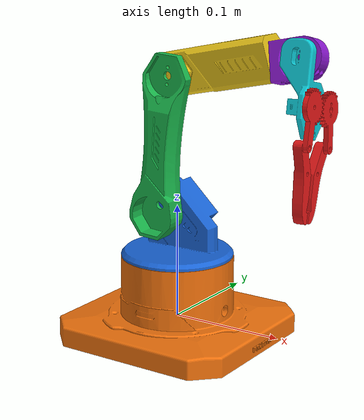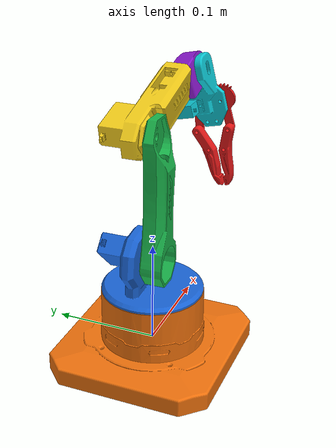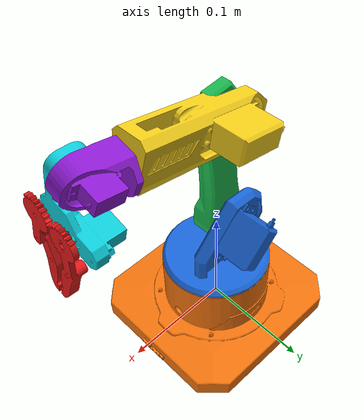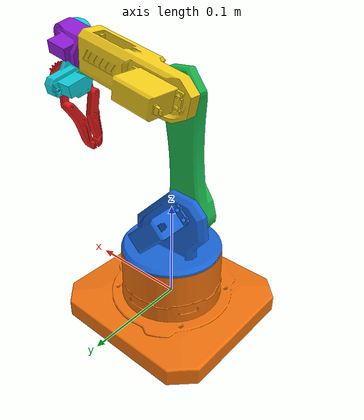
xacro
<?xml version="1.0"?>
<robot xmlns:xacro="http://www.ros.org/wiki/xacro" name="falcon_robotic_arm">
    <xacro:arg name="initial_positions_file" default="initial_positions.yaml" />
    <xacro:arg name="sim_gazebo"    default="false"/>
    <xacro:arg name="hardware_type" default="fake"/>
    <xacro:arg name="serial_port"   default="/dev/ttyACM0"/>

    <!-- Import falcon_robotic_arm urdf file (includes ros2_control via description) -->
    <xacro:include filename="$(find falcon_robotic_arm_description)/urdf/falcon_robotic_arm.xacro" />

</robot>

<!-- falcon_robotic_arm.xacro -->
<robot name="falcon_robotic_arm_description" xmlns:xacro="http://www.ros.org/wiki/xacro">

  <xacro:arg name="sim_gazebo"    default="false"/>
  <xacro:arg name="hardware_type" default="fake"/>
  <xacro:arg name="serial_port"   default="/dev/ttyACM0"/>
  <xacro:arg name="mesh_path"     default="package://falcon_robotic_arm_description/meshes"/>

  <xacro:include filename="$(find falcon_robotic_arm_description)/urdf/materials.xacro"/>
  <xacro:include filename="$(find falcon_robotic_arm_description)/urdf/falcon_robotic_arm.ros2control.xacro"/>
  <xacro:include filename="$(find falcon_robotic_arm_description)/urdf/falcon_robotic_arm.gazebo"/>

  <link name="world"/>

  <joint name="world_fixed" type="fixed">
    <origin xyz="0 0 0" rpy="-1.5708 0 0"/>
    <parent link="world"/>
    <child link="base_link"/>
  </joint>

  <link name="base_link">
    <inertial>
      <origin xyz="-0.0019960844905343 -0.0153377163207999 1.93060452762796E-07" rpy="0 0 0" />
      <mass value="1.35067323377802" />
      <inertia ixx="0.00197379180518826" ixy="-2.39949962417709E-05" ixz="-4.37708520775855E-10"
               iyy="0.00359939253361497" iyz="-1.49420778344598E-10" izz="0.00215545898679393" />
    </inertial>
    <visual>
      <origin xyz="0 0 0" rpy="0 0 0" />
      <geometry>
        <mesh filename="$(arg mesh_path)/visual/base_link.STL" />
      </geometry>
      <material name="falcon_orange"/>
    </visual>
    <collision>
      <origin xyz="0 0 0" rpy="0 0 0" />
      <geometry>
        <mesh filename="$(arg mesh_path)/collision/base_link.STL" />
      </geometry>
    </collision>
  </link>

  <link name="link_1">
    <inertial>
      <origin xyz="-0.00620394458366335 0.00751730270504279 0.00967772822170036" rpy="0 0 0" />
      <mass value="1.03065042921638" />
      <inertia ixx="0.000473702442232536" ixy="4.78979397009768E-06" ixz="7.46275012376232E-05"
               iyy="0.000598084004157016" iyz="-2.62259436207833E-05" izz="0.000586066353319823" />
    </inertial>
    <visual>
      <origin xyz="0 0 0" rpy="0 0 0" />
      <geometry>
        <mesh filename="$(arg mesh_path)/visual/link_1.STL" />
      </geometry>
      <material name="falcon_blue"/>
    </visual>
    <collision>
      <origin xyz="0 0 0" rpy="0 0 0" />
      <geometry>
        <mesh filename="$(arg mesh_path)/collision/link_1.STL" />
      </geometry>
    </collision>
  </link>

  <link name="link_2">
    <inertial>
      <origin xyz="0.00343704699093632 -0.0484533440120739 -0.00169296782221129" rpy="0 0 0" />
      <mass value="0.43322422150071" />
      <inertia ixx="0.000723130145208504" ixy="4.6714386780207E-05" ixz="-1.9951175089134E-06"
               iyy="6.62295883530864E-05" iyz="1.51706818836744E-05" izz="0.0007621611625683" />
    </inertial>
    <visual>
      <origin xyz="0 0 0" rpy="0 0 0" />
      <geometry>
        <mesh filename="$(arg mesh_path)/visual/link_2.STL" />
      </geometry>
      <material name="falcon_green"/>
    </visual>
    <collision>
      <origin xyz="0 0 0" rpy="0 0 0" />
      <geometry>
        <mesh filename="$(arg mesh_path)/collision/link_2.STL" />
      </geometry>
    </collision>
  </link>

  <link name="link_3">
    <inertial>
      <origin xyz="0.0321836019015889 -0.00783285253165519 0.0208645676066189" rpy="0 0 0" />
      <mass value="0.703739757969" />
      <inertia ixx="0.000141078786527962" ixy="8.774359256817E-05" ixz="-5.61715136467105E-06"
               iyy="0.000497859931087257" iyz="-3.06483915967249E-07" izz="0.000525999837211792" />
    </inertial>
    <visual>
      <origin xyz="0 0 0" rpy="0 0 0" />
      <geometry>
        <mesh filename="$(arg mesh_path)/visual/link_3.STL" />
      </geometry>
      <material name="falcon_yellow"/>
    </visual>
    <collision>
      <origin xyz="0 0 0" rpy="0 0 0" />
      <geometry>
        <mesh filename="$(arg mesh_path)/collision/link_3.STL" />
      </geometry>
    </collision>
  </link>

  <link name="link_4">
    <inertial>
      <origin xyz="0.0140180364394324 -0.00281389311320728 0.0105191248955689" rpy="0 0 0" />
      <mass value="0.179553546620447" />
      <inertia ixx="2.64090419843721E-05" ixy="3.18258793807896E-06" ixz="-6.22607142354255E-06"
               iyy="4.12332119298094E-05" iyz="1.45356805791967E-07" izz="3.01227817618961E-05" />
    </inertial>
    <visual>
      <origin xyz="0 0 0" rpy="0 0 0" />
      <geometry>
        <mesh filename="$(arg mesh_path)/visual/link_4.STL" />
      </geometry>
      <material name="falcon_purple"/>
    </visual>
    <collision>
      <origin xyz="0 0 0" rpy="0 0 0" />
      <geometry>
        <mesh filename="$(arg mesh_path)/collision/link_4.STL" />
      </geometry>
    </collision>
  </link>

  <link name="link_5">
    <inertial>
      <origin xyz="0.00544735994759318 0.0310241604159701 0.00424021692736841" rpy="0 0 0" />
      <mass value="0.178973093548359" />
      <inertia ixx="7.37572142902091E-05" ixy="-1.23054603956378E-05" ixz="-1.11952234366318E-06"
               iyy="3.01336288473334E-05" iyz="-7.97323306909106E-06" izz="6.23974948195481E-05" />
    </inertial>
    <visual>
      <origin xyz="0 0 0" rpy="0 0 0" />
      <geometry>
        <mesh filename="$(arg mesh_path)/visual/link_5.STL" />
      </geometry>
      <material name="falcon_cyan"/>
    </visual>
    <collision>
      <origin xyz="0 0 0" rpy="0 0 0" />
      <geometry>
        <mesh filename="$(arg mesh_path)/collision/link_5.STL" />
      </geometry>
    </collision>
  </link>

  <link name="gripper_link_1">
    <inertial>
      <origin xyz="0.0139328400746157 -0.0105060863672006 -0.0351215310829361" rpy="0 0 0" />
      <mass value="0.0566110893029332" />
      <inertia ixx="1.40520051854666E-05" ixy="1.40645161581947E-06" ixz="3.66393245597157E-06"
               iyy="1.25400099347856E-05" iyz="-4.17437951258401E-06" izz="4.53311301231506E-06" />
    </inertial>
    <visual>
      <origin xyz="0 0 0" rpy="0 0 0" />
      <geometry>
        <mesh filename="$(arg mesh_path)/visual/gripper_link_1.STL" />
      </geometry>
      <material name="falcon_red"/>
    </visual>
    <collision>
      <origin xyz="0 0 0" rpy="0 0 0" />
      <geometry>
        <mesh filename="$(arg mesh_path)/collision/gripper_link_1.STL" />
      </geometry>
    </collision>
  </link>

  <link name="gripper_link_2">
    <inertial>
      <origin xyz="0.0384298599777133 0.00540363244949994 0.00761482545500121" rpy="0 0 0" />
      <mass value="0.0571681364750211" />
      <inertia ixx="2.94728992397961E-06" ixy="-2.05300547048327E-06" ixz="-3.83750536740406E-06"
               iyy="1.41187090998331E-05" iyz="-7.84101517361656E-07" izz="1.41072271531774E-05" />
    </inertial>
    <visual>
      <origin xyz="0 0 0" rpy="0 0 0" />
      <geometry>
        <mesh filename="$(arg mesh_path)/visual/gripper_link_2.STL" />
      </geometry>
      <material name="falcon_red"/>
    </visual>
    <collision>
      <origin xyz="0 0 0" rpy="0 0 0" />
      <geometry>
        <mesh filename="$(arg mesh_path)/collision/gripper_link_2.STL" />
      </geometry>
    </collision>
  </link>

  <joint name="joint_1" type="revolute">
    <origin xyz="0 -0.0566999999999999 0" rpy="1.5707963267949 0 0" />
    <parent link="base_link" />
    <child link="link_1" />
    <axis xyz="0 0 -1" />
    <limit lower="-1.5708" upper="1.5708" effort="20" velocity="1" />
  </joint>

  <joint name="joint_2" type="revolute">
    <origin xyz="-0.0137215131637984 -0.00641954359829768 0.0427800384078716" rpy="-1.5707963267949 0 0" />
    <parent link="link_1" />
    <child link="link_2" />
    <axis xyz="-0.0303599450227944 0 0.999539030622723" />
    <limit lower="-1.5708" upper="1.5708" effort="50" velocity="1" />
    <dynamics damping="0.5" friction="0.0"/>
  </joint>

  <joint name="joint_3" type="revolute">
    <origin xyz="0.00794095704254513 -0.112469753821526 0.000241198204225561" rpy="0 0 0" />
    <parent link="link_2" />
    <child link="link_3" />
    <axis xyz="-0.0303599450227945 0 0.999539030622723" />
    <limit lower="-1.5708" upper="1.5708" effort="30" velocity="1" />
    <dynamics damping="0.3" friction="0.0"/>
  </joint>

  <joint name="joint_4" type="revolute">
    <origin xyz="0.0973881872709224 -0.0162762521315378 0.0182651196721196" rpy="1.5707963267949 0 0.392699081698725" />
    <parent link="link_3" />
    <child link="link_4" />
    <axis xyz="0.818727734388728 0.0296401954212068 0.573416389509484" />
    <limit lower="-1.5708" upper="1.5708" effort="20" velocity="1" />
  </joint>

  <joint name="joint_5" type="revolute">
    <origin xyz="0.0192684557070627 -0.0141614965142562 0.0178650813358514" rpy="-1.5707963267949 -0.392699081698725 0" />
    <parent link="link_4" />
    <child link="link_5" />
    <axis xyz="-0.0223564735183862 -0.233891765016945 -0.972005571151256" />
    <limit lower="-1.5708" upper="1.5708" effort="20" velocity="1" />
  </joint>

  <joint name="gripper_joint_1" type="revolute">
    <origin xyz="0.015564 0.040832 0.0095921" rpy="1.5708 0 0.29671" />
    <parent link="link_5" />
    <child link="gripper_link_1" />
    <axis xyz="-0.94301 0.012807 -0.33251" />
    <limit lower="-0.7" upper="0" effort="10" velocity="1" />
  </joint>

  <joint name="gripper_joint_2" type="revolute">
    <origin xyz="0.02075 0.034216 -0.016941" rpy="1.5043 0.28674 1.8224" />
    <parent link="link_5" />
    <child link="gripper_link_2" />
    <axis xyz="-0.27417 -0.15762 0.94868" />
    <mimic joint="gripper_joint_1" multiplier="1.0" offset="0.0"/>
    <limit lower="-0.7" upper="0" effort="10" velocity="1" />
  </joint>

</robot>

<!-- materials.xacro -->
<robot name="falcon_robotic_arm" xmlns:xacro="http://www.ros.org/wiki/xacro">

  <material name="falcon_orange">
    <color rgba="0.95 0.45 0.05 1.0"/>
  </material>

  <material name="falcon_blue">
    <color rgba="0.10 0.40 0.85 1.0"/>
  </material>

  <material name="falcon_green">
    <color rgba="0.10 0.72 0.30 1.0"/>
  </material>

  <material name="falcon_yellow">
    <color rgba="0.95 0.80 0.10 1.0"/>
  </material>

  <material name="falcon_purple">
    <color rgba="0.55 0.10 0.82 1.0"/>
  </material>

  <material name="falcon_cyan">
    <color rgba="0.05 0.80 0.85 1.0"/>
  </material>

  <material name="falcon_red">
    <color rgba="0.90 0.10 0.10 1.0"/>
  </material>

</robot>
